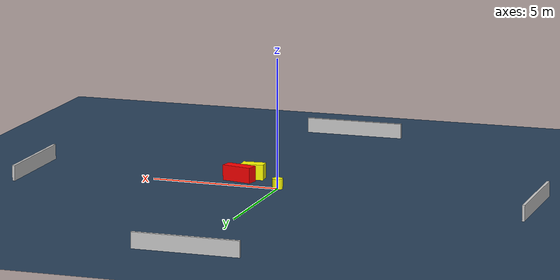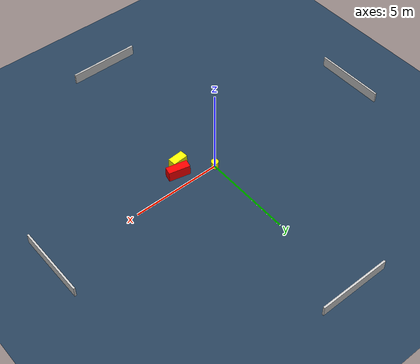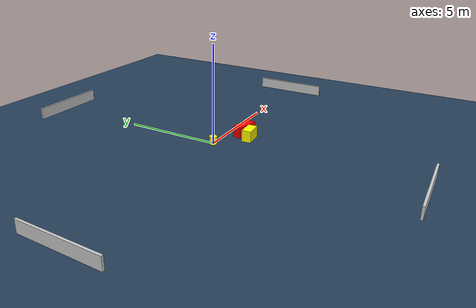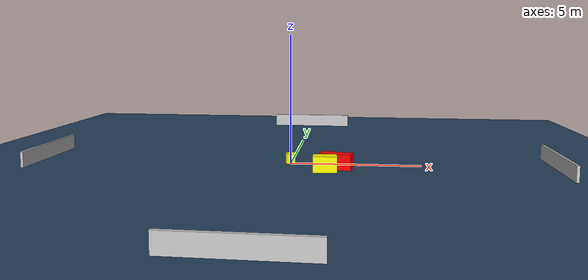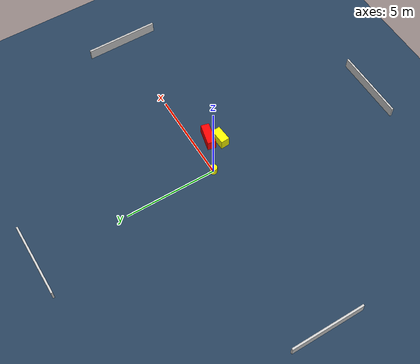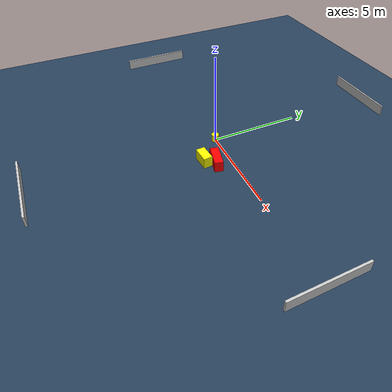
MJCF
<?xml version="1.0" ?>
<mujoco model="generated_environment">
  <option timestep="0.01" integrator="RK4" cone="elliptic"/>
  <default>
    <geom density="1"/>
  </default>
  <asset>
    <texture builtin="gradient" height="3072" name="skybox" rgb1="0.3 0.5 0.7" rgb2="0 0 0" type="skybox" width="512"/>
    <texture builtin="checker" height="300" name="groundplane" rgb1="0.2 0.3 0.4" rgb2="0.1 0.2 0.3" type="2d" width="300"/>
    <material name="groundplane" reflectance="0.2" texrepeat="5 5" texture="groundplane"/>
  </asset>
  <worldbody>
    <light dir="0 0 -1" directional="true" pos="0 0 1.5"/>
    <geom condim="3" friction="0.5 0.005 0.001" material="groundplane" name="floor" pos="0 0 0" size="0 0 0.05" type="plane"/>
    <body name="walls">
      <geom name="wall_1" condim="4" pos="-10.0 0.0 0.3" rgba="0.800000011920929 0.800000011920929 0.800000011920929 1.0" size="0.05 2.0 0.3" type="box"/>
      <geom name="wall_2" condim="4" pos="10.0 0.0 0.3" rgba="0.800000011920929 0.800000011920929 0.800000011920929 1.0" size="0.05 2.0 0.3" type="box"/>
      <geom name="wall_3" condim="4" pos="0.0 -10.0 0.3" rgba="0.800000011920929 0.800000011920929 0.800000011920929 1.0" size="2.0 0.05 0.3" type="box"/>
      <geom name="wall_4" condim="4" pos="0.0 10.0 0.3" rgba="0.800000011920929 0.800000011920929 0.800000011920929 1.0" size="2.0 0.05 0.3" type="box"/>
    </body>
    <body name="robot">
      <joint name="joint_x" type="slide" pos="0 0 0" axis="1 0 0"/>
      <joint name="joint_y" type="slide" pos="0 0 0" axis="0 1 0"/>
      <geom name="robot" type="cylinder" pos="0.0 0.0 0.2" size="0.2 0.2 0.0" mass="5.0" friction="1.0 0.005 0.0001" condim="4" rgba="1.0 1.0 0.0 1.0"/>
    </body>
    <body name="obstacle_1_movable">
      <geom name="obstacle_1_movable" condim="4" pos="1.4161909200836933 -1.2941550160428206 0.3" euler="0 0 273.9974325696645" friction="0.0 0.005 0.001" rgba="1.0 1.0 0.0 1.0" size="0.23774780108025562 0.4420540262218993 0.3" type="box" mass="0.1"/>
      <joint type="free"/>
    </body>
    <body name="obstacle_2_static">
      <geom name="obstacle_2_static" condim="4" pos="1.8147206931293791 -0.7858459799502506 0.3" euler="0 0 167.17717941353774" friction="0.0 0.005 0.001" rgba="1.0 0.0 0.0 1.0" size="0.5981789783975944 0.22653606084325184 0.3" type="box"/>
    </body>
  </worldbody>
  <actuator>
    <motor name="actuator_x" joint="joint_x" gear="1" ctrlrange="-1 1"/>
    <motor name="actuator_y" joint="joint_y" gear="1" ctrlrange="-1 1"/>
  </actuator>
</mujoco>
